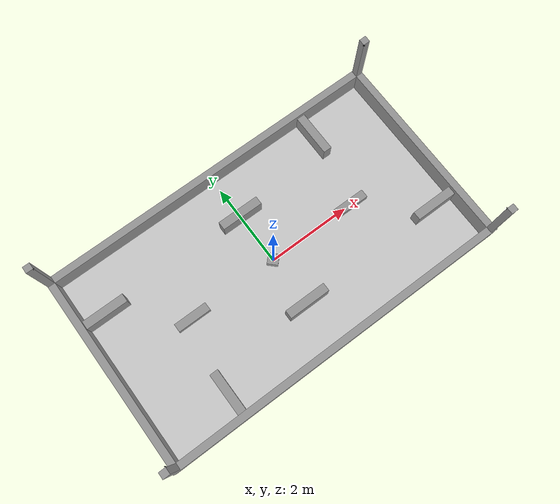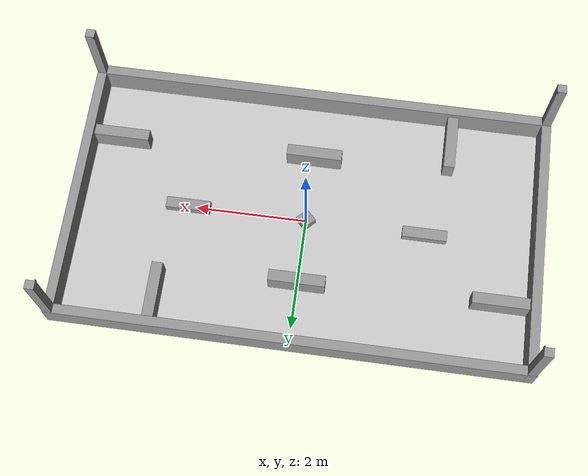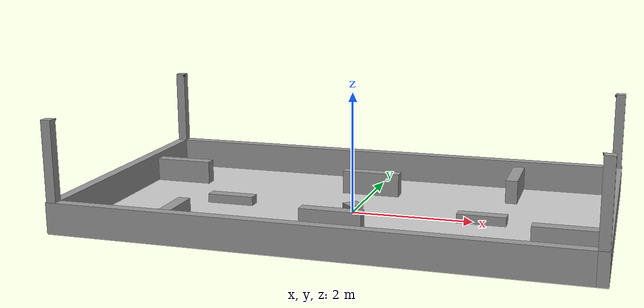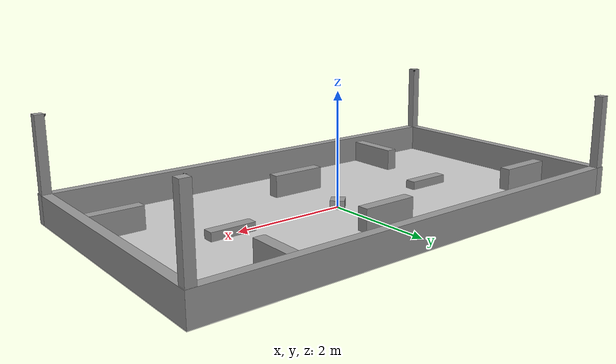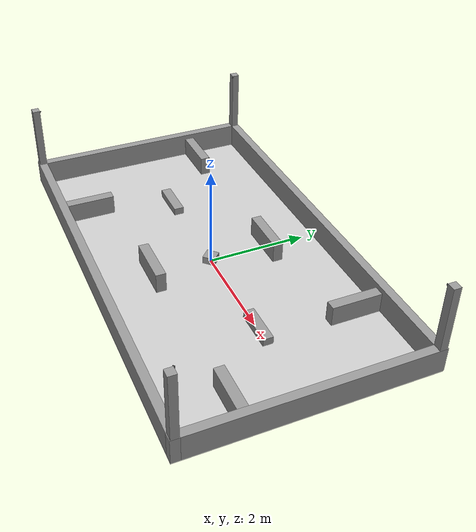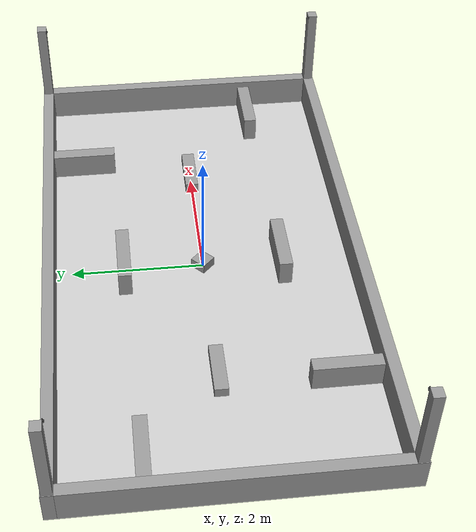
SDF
<sdf version="1.6">
 <world name="default">
  <light name="sun" type="directional">
   <pose>0 0 10 0 -0 0</pose>
   <diffuse>0.8 0.8 0.8 1</diffuse>
   <specular>0.1 0.1 0.1 1</specular>
   <attenuation>
    <range>1000</range>
    <constant>0.9</constant>
    <linear>0.01</linear>
    <quadratic>0.001</quadratic>
   </attenuation>
   <direction>-0.5 0.5 -1</direction>
  </light>
  <gravity>0 0 -9.8</gravity>
  <magnetic_field>6e-06 2.3e-05 -4.2e-05</magnetic_field>
  <atmosphere type="adiabatic"/>
  <physics name="default_physics" default="0" type="ode">
   <max_step_size>0.01</max_step_size>
   <real_time_factor>1</real_time_factor>
   <real_time_update_rate>0</real_time_update_rate>
  </physics>
  <scene><ambient>0.4 0.4 0.4 1</ambient><background>0.7 0.7 0.7 1</background><shadows>1</shadows></scene>
  <spherical_coordinates>
   <surface_model>EARTH_WGS84</surface_model>
   <latitude_deg>0</latitude_deg>
   <longitude_deg>0</longitude_deg>
   <elevation>0</elevation>
   <heading_deg>0</heading_deg>
  </spherical_coordinates>
  <model name="obstacles">
   <pose frame="world">0.0 0.0 0 0 -0 0</pose>
   <link name="wall_north">
    <collision name="collision">
     <geometry><box><size>8.42 0.17 0.5</size></box></geometry>
     <pose>0 0 0.25 0 -0 0</pose>
    </collision>
    <visual name="visual">
     <pose>0 0 0.25 0 -0 0</pose>
     <geometry><box><size>8.42 0.17 0.5</size></box></geometry>
     <material>
      <script><uri>file://media/materials/scripts/gazebo.material</uri><name>Gazebo/Grey</name></script>
      <ambient>1 1 1 1</ambient>
     </material>
    </visual>
    <pose>0 2.325 0 0 -0 1.5e-05</pose>
   </link>
   <link name="wall_east">
    <collision name="collision">
     <geometry><box><size>4.820 0.17 0.5</size></box></geometry>
     <pose>0 0 0.25 0 -0 0</pose>
    </collision>
    <visual name="visual">
     <pose>0 0 0.25 0 -0 0</pose>
     <geometry><box><size>4.820 0.17 0.5</size></box></geometry>
     <material>
      <script><uri>file://media/materials/scripts/gazebo.material</uri><name>Gazebo/Grey</name></script>
      <ambient>1 1 1 1</ambient>
     </material>
    </visual>
    <pose>4.125 0.000000 0 0 0 -1.5708</pose>
   </link>
   <link name="wall_south">
    <collision name="collision">
     <geometry><box><size>8.420 0.17 0.5</size></box></geometry>
     <pose>0 0 0.25 0 -0 0</pose>
    </collision>
    <visual name="visual">
     <pose>0 0 0.25 0 -0 0</pose>
     <geometry><box><size>8.420 0.17 0.5</size></box></geometry>
     <material>
      <script><uri>file://media/materials/scripts/gazebo.material</uri><name>Gazebo/Grey</name></script>
      <ambient>1 1 1 1</ambient>
     </material>
    </visual>
    <pose>0 -2.325 0 0 0 -3.14158</pose>
   </link>
   <link name="wall_west">
    <collision name="collision">
     <geometry><box><size>4.820 0.17 0.5</size></box></geometry>
     <pose>0 0 0.25 0 -0 0</pose>
    </collision>
    <visual name="visual">
     <pose>0 0 0.25 0 -0 0</pose>
     <geometry><box><size>4.820 0.17 0.5</size></box></geometry>
     <material>
      <script><uri>file://media/materials/scripts/gazebo.material</uri><name>Gazebo/Grey</name></script>
      <ambient>1 1 1 1</ambient>
     </material>
    </visual>
    <pose>-4.125 -0.000000 0 0 0 -1.5708</pose>
   </link>
   <link name="obstacle_b5">
    <collision name="collision">
     <geometry><box><size>0.25 0.25 0.15</size></box></geometry>
     <pose>0 0 0.075 0 -0 0</pose>
    </collision>
    <visual name="visual">
     <pose>0 0 0.075 0 -0 0</pose>
     <geometry><box><size>0.25 0.25 0.15</size></box></geometry>
     <material>
      <script><uri>file://media/materials/scripts/gazebo.material</uri><name>Gazebo/Grey</name></script>
      <ambient>1 1 1 1</ambient>
     </material>
    </visual>
    <pose>0 0 0 0 0 -0.785398</pose>
   </link>
   <link name="obstacle_b1">
    <collision name="collision">
     <geometry><box><size>1.0 0.2 0.4</size></box></geometry>
     <pose>0 0 0.2 0 -0 0</pose>
    </collision>
    <visual name="visual">
     <pose>0 0 0.2 0 -0 0</pose>
     <geometry><box><size>1.0 0.2 0.4</size></box></geometry>
     <material>
      <script><uri>file://media/materials/scripts/gazebo.material</uri><name>Gazebo/Grey</name></script>
      <ambient>1 1 1 1</ambient>
     </material>
    </visual>
    <pose>-3.54000 1.14000 0 0 -0 0</pose>
   </link>
   <link name="obstacle_b3">
    <collision name="collision">
     <geometry><box><size>1 0.2 0.4</size></box></geometry>
     <pose>0 0 0.2 0 -0 0</pose>
    </collision>
    <visual name="visual">
     <pose>0 0 0.2 0 -0 0</pose>
     <geometry><box><size>1 0.2 0.4</size></box></geometry>
     <material>
      <script><uri>file://media/materials/scripts/gazebo.material</uri><name>Gazebo/Grey</name></script>
      <ambient>1 1 1 1</ambient>
     </material>
    </visual>
    <pose>-2.44000 -1.74000 0 0 -0 1.5708</pose>
   </link>
   <link name="obstacle_b9">
    <collision name="collision">
     <geometry><box><size>1 0.2 0.4</size></box></geometry>
     <pose>0 0 0.2 0 -0 0</pose>
    </collision>
    <visual name="visual">
     <pose>0 0 0.2 0 -0 0</pose>
     <geometry><box><size>1 0.2 0.4</size></box></geometry>
     <material>
      <script><uri>file://media/materials/scripts/gazebo.material</uri><name>Gazebo/Grey</name></script>
      <ambient>1 1 1 1</ambient>
     </material>
    </visual>
    <pose>3.540000 -1.140000 0 0 -0 3.14159</pose>
   </link>
   <link name="obstacle_b7">
    <collision name="collision">
     <geometry><box><size>1 0.2 0.4</size></box></geometry>
     <pose>0 0 0.2 0 -0 0</pose>
    </collision>
    <visual name="visual">
     <pose>0 0 0.2 0 -0 0</pose>
     <geometry><box><size>1 0.2 0.4</size></box></geometry>
     <material>
      <script><uri>file://media/materials/scripts/gazebo.material</uri><name>Gazebo/Grey</name></script>
      <ambient>1 1 1 1</ambient>
     </material>
    </visual>
    <pose>2.440000 1.740000 0 0 -0 1.5708</pose>
   </link>
   <link name="obstacle_b4">
    <collision name="collision">
     <geometry><box><size>1 0.2 0.4</size></box></geometry>
     <pose>0 0 0.2 0 -0 0</pose>
    </collision>
    <visual name="visual">
     <pose>0 0 0.2 0 -0 0</pose>
     <geometry><box><size>1 0.2 0.4</size></box></geometry>
     <material>
      <script><uri>file://media/materials/scripts/gazebo.material</uri><name>Gazebo/Grey</name></script>
      <ambient>1 1 1 1</ambient>
     </material>
    </visual>
    <pose>0.000000 1.205000 0 0 -0 0</pose>
   </link>
   <link name="obstacle_b6">
    <collision name="collision">
     <geometry><box><size>1 0.2 0.4</size></box></geometry>
     <pose>0 0 0.2 0 -0 0</pose>
    </collision>
    <visual name="visual">
     <pose>0 0 0.2 0 -0 0</pose>
     <geometry><box><size>1 0.2 0.4</size></box></geometry>
     <material>
      <script><uri>file://media/materials/scripts/gazebo.material</uri><name>Gazebo/Grey</name></script>
      <ambient>1 1 1 1</ambient>
     </material>
    </visual>
    <pose>0.000000 -1.205000 0 0 -0 0</pose>
   </link>
   <link name="obstacle_b2">
    <collision name="collision">
     <geometry><box><size>0.8 0.2 0.15</size></box></geometry>
     <pose>0 0 0.075 0 -0 0</pose>
    </collision>
    <visual name="visual">
     <pose>0 0 0.075 0 -0 0</pose>
     <geometry><box><size>0.8 0.2 0.15</size></box></geometry>
     <material>
      <script><uri>file://media/materials/scripts/gazebo.material</uri><name>Gazebo/Grey</name></script>
      <ambient>1 1 1 1</ambient>
     </material>
    </visual>
    <pose>-2.14000 -0.000000 0 0 -0 0</pose>
   </link>
   <link name="obstacle_b8">
    <collision name="collision">
     <geometry><box><size>0.8 0.2 0.15</size></box></geometry>
     <pose>0 0 0.075 0 -0 0</pose>
    </collision>
    <visual name="visual">
     <pose>0 0 0.075 0 -0 0</pose>
     <geometry><box><size>0.8 0.2 0.15</size></box></geometry>
     <material>
      <script><uri>file://media/materials/scripts/gazebo.material</uri><name>Gazebo/Grey</name></script>
      <ambient>1 1 1 1</ambient>
     </material>
    </visual>
    <pose>2.140000 -0.000000 0 0 -0 0</pose>
   </link>
   <static>1</static>
  </model>
  <model name="lookout_d4">
   <pose frame="world">4.12 2.32 0 0 -0 0</pose>
   <link name="pole">
    <collision name="collision">
     <geometry><box><size>0.16 0.15 1.768</size></box></geometry>
     <pose>0 0 0.904 0 -0 0</pose>
    </collision>
    <visual name="visual">
     <pose>0 0 0.904 0 -0 0</pose>
     <geometry><box><size>0.16 0.15 1.768</size></box></geometry>
     <material>
      <script><uri>file://media/materials/scripts/gazebo.material</uri><name>Gazebo/Grey</name></script>
      <ambient>1 1 1 1</ambient>
     </material>
    </visual>
   </link>
   <static>1</static>
  </model>
  <model name="lookout_d3">
   <pose frame="world">4.12 -2.32 0 0 -0 0</pose>
   <link name="pole">
    <collision name="collision">
     <geometry><box><size>0.16 0.15 1.768</size></box></geometry>
     <pose>0 0 0.904 0 -0 0</pose>
    </collision>
    <visual name="visual">
     <pose>0 0 0.904 0 -0 0</pose>
     <geometry><box><size>0.16 0.15 1.768</size></box></geometry>
     <material>
      <script><uri>file://media/materials/scripts/gazebo.material</uri><name>Gazebo/Grey</name></script>
      <ambient>1 1 1 1</ambient>
     </material>
    </visual>
   </link>
   <static>1</static>
  </model>
  <model name="lookout_d2">
   <pose frame="world">-4.12 -2.32 0 0 -0 0</pose>
   <link name="pole">
    <collision name="collision">
     <geometry><box><size>0.16 0.15 1.768</size></box></geometry>
     <pose>0 0 0.904 0 -0 0</pose>
    </collision>
    <visual name="visual">
     <pose>0 0 0.904 0 -0 0</pose>
     <geometry><box><size>0.16 0.15 1.768</size></box></geometry>
     <material>
      <script><uri>file://media/materials/scripts/gazebo.material</uri><name>Gazebo/Grey</name></script>
      <ambient>1 1 1 1</ambient>
     </material>
    </visual>
   </link>
   <static>1</static>
  </model>
  <model name="lookout_d1">
   <pose frame="world">-4.12 2.32 0 0 -0 0</pose>
   <link name="pole">
    <collision name="collision">
     <geometry><box><size>0.16 0.15 1.768</size></box></geometry>
     <pose>0 0 0.904 0 -0 0</pose>
    </collision>
    <visual name="visual">
     <pose>0 0 0.904 0 -0 0</pose>
     <geometry><box><size>0.16 0.15 1.768</size></box></geometry>
     <material>
      <script><uri>file://media/materials/scripts/gazebo.material</uri><name>Gazebo/Grey</name></script>
      <ambient>1 1 1 1</ambient>
     </material>
    </visual>
   </link>
   <static>1</static>
  </model>
  <model name="lookout_d4_camera">
   <link name="camera_link">
    <inertial>
     <mass>0.1</mass>
     <inertia><ixx>0.01</ixx><ixy>0</ixy><ixz>0</ixz><iyy>0.01</iyy><iyz>0</iyz><izz>0.01</izz></inertia>
    </inertial>
    <sensor name="camera_node" type="camera">
     <update_rate>30</update_rate>
     <camera name="lookout_d4_camera">
      <horizontal_fov>1.39626</horizontal_fov>
      <image><width>1280</width><height>720</height><format>R8G8B8</format></image>
      <clip><near>0.02</near><far>300</far></clip>
      <noise><type>gaussian</type><mean>0</mean><stddev>0.007</stddev></noise>
     </camera>
     <plugin name="gazebo_camera" filename="libgazebo_ros_camera.so">
      <robotNamespace>/outpost_camera</robotNamespace>
      <cameraName>outpost_camera0</cameraName>
      <imageTopicName>image_raw</imageTopicName>
     </plugin>
    </sensor>
    <visual name="camera_link_visual">
     <geometry><box><size>0.01 0.04 0.04</size></box></geometry>
     <material>
      <script><name>Gazebo/Black</name><uri>file://media/materials/scripts/gazebo.material</uri></script>
      <ambient>0 0 0 1</ambient>
      <diffuse>0 0 0 1</diffuse>
      <specular>0.1 0.1 0.1 1</specular>
      <emissive>0 0 0 1</emissive>
     </material>
    </visual>
    <collision name="camera_link_collision">
     <geometry><box><size>0.01 0.04 0.04</size></box></geometry>
     <surface>
      <friction>
       <ode><mu>1</mu><mu2>1</mu2><fdir1>0 0 0</fdir1><slip1>0</slip1><slip2>0</slip2></ode>
       <torsional>
        <coefficient>1</coefficient>
        <patch_radius>0</patch_radius>
        <surface_radius>0</surface_radius>
        <use_patch_radius>1</use_patch_radius>
        <ode><slip>0</slip></ode>
       </torsional>
      </friction>
      <bounce><restitution_coefficient>0</restitution_coefficient><threshold>1e+06</threshold></bounce>
      <contact>
       <collide_without_contact>0</collide_without_contact>
       <collide_without_contact_bitmask>1</collide_without_contact_bitmask>
       <collide_bitmask>1</collide_bitmask>
       <ode>
        <soft_cfm>0</soft_cfm>
        <soft_erp>0.2</soft_erp>
        <kp>1e+13</kp>
        <kd>1</kd>
        <max_vel>0.01</max_vel>
        <min_depth>0</min_depth>
       </ode>
       <bullet>
        <split_impulse>1</split_impulse>
        <split_impulse_penetration_threshold>-0.01</split_impulse_penetration_threshold>
        <soft_cfm>0</soft_cfm>
        <soft_erp>0.2</soft_erp>
        <kp>1e+13</kp>
        <kd>1</kd>
       </bullet>
      </contact>
     </surface>
    </collision>
   </link>
   <static>1</static>
   <pose frame="world">4.04 2.24 1.768 0 0.25 -2.355</pose>
  </model>
  <model name="lookout_d3_camera">
   <link name="camera_link">
    <pose frame="world">0 0 -0 0 -0 0</pose>
    <inertial>
     <mass>0.1</mass>
     <inertia><ixx>0.01</ixx><ixy>0</ixy><ixz>0</ixz><iyy>0.01</iyy><iyz>0</iyz><izz>0.01</izz></inertia>
    </inertial>
    <sensor name="camera_node" type="camera">
     <update_rate>30</update_rate>
     <camera name="lookout_d3_camera">
      <horizontal_fov>1.39626</horizontal_fov>
      <image><width>1280</width><height>720</height><format>R8G8B8</format></image>
      <clip><near>0.02</near><far>300</far></clip>
      <noise><type>gaussian</type><mean>0</mean><stddev>0.007</stddev></noise>
     </camera>
     <plugin name="gazebo_camera" filename="libgazebo_ros_camera.so">
      <robotNamespace>/outpost_camera</robotNamespace>
      <cameraName>outpost_camera1</cameraName>
      <imageTopicName>image_raw</imageTopicName>
     </plugin>
    </sensor>
    <visual name="camera_link_visual">
     <geometry><box><size>0.01 0.04 0.04</size></box></geometry>
     <material>
      <script><name>Gazebo/Black</name><uri>file://media/materials/scripts/gazebo.material</uri></script>
      <ambient>0 0 0 1</ambient>
      <diffuse>0 0 0 1</diffuse>
      <specular>0.1 0.1 0.1 1</specular>
      <emissive>0 0 0 1</emissive>
     </material>
    </visual>
    <collision name="camera_link_collision">
     <geometry><box><size>0.01 0.04 0.04</size></box></geometry>
     <surface>
      <friction>
       <ode><mu>1</mu><mu2>1</mu2><fdir1>0 0 0</fdir1><slip1>0</slip1><slip2>0</slip2></ode>
       <torsional>
        <coefficient>1</coefficient>
        <patch_radius>0</patch_radius>
        <surface_radius>0</surface_radius>
        <use_patch_radius>1</use_patch_radius>
        <ode><slip>0</slip></ode>
       </torsional>
      </friction>
      <bounce><restitution_coefficient>0</restitution_coefficient><threshold>1e+06</threshold></bounce>
      <contact>
       <collide_without_contact>0</collide_without_contact>
       <collide_without_contact_bitmask>1</collide_without_contact_bitmask>
       <collide_bitmask>1</collide_bitmask>
       <ode>
        <soft_cfm>0</soft_cfm>
        <soft_erp>0.2</soft_erp>
        <kp>1e+13</kp>
        <kd>1</kd>
        <max_vel>0.01</max_vel>
        <min_depth>0</min_depth>
       </ode>
       <bullet>
        <split_impulse>1</split_impulse>
        <split_impulse_penetration_threshold>-0.01</split_impulse_penetration_threshold>
        <soft_cfm>0</soft_cfm>
        <soft_erp>0.2</soft_erp>
        <kp>1e+13</kp>
        <kd>1</kd>
       </bullet>
      </contact>
     </surface>
    </collision>
   </link>
   <static>1</static>
   <pose frame="world">4.04 -2.24 1.768 0 0.25 2.355</pose>
  </model>
  <model name="lookout_d2_camera">
   <link name="camera_link">
    <inertial>
     <mass>0.1</mass>
     <inertia><ixx>0.01</ixx><ixy>0</ixy><ixz>0</ixz><iyy>0.01</iyy><iyz>0</iyz><izz>0.01</izz></inertia>
    </inertial>
    <sensor name="camera_node" type="camera">
     <update_rate>30</update_rate>
     <camera name="lookout_d2_camera">
      <horizontal_fov>1.39626</horizontal_fov>
      <image><width>1280</width><height>720</height><format>R8G8B8</format></image>
      <clip><near>0.02</near><far>300</far></clip>
      <noise><type>gaussian</type><mean>0</mean><stddev>0.007</stddev></noise>
     </camera>
     <plugin name="gazebo_camera" filename="libgazebo_ros_camera.so">
      <robotNamespace>/outpost_camera</robotNamespace>
      <cameraName>outpost_camera2</cameraName>
      <imageTopicName>image_raw</imageTopicName>
     </plugin>
    </sensor>
    <visual name="camera_link_visual">
     <geometry><box><size>0.01 0.04 0.04</size></box></geometry>
     <material>
      <script><name>Gazebo/Black</name><uri>file://media/materials/scripts/gazebo.material</uri></script>
      <ambient>0 0 0 1</ambient>
      <diffuse>0 0 0 1</diffuse>
      <specular>0.1 0.1 0.1 1</specular>
      <emissive>0 0 0 1</emissive>
     </material>
    </visual>
    <collision name="camera_link_collision">
     <geometry><box><size>0.01 0.04 0.04</size></box></geometry>
     <surface>
      <friction>
       <ode><mu>1</mu><mu2>1</mu2><fdir1>0 0 0</fdir1><slip1>0</slip1><slip2>0</slip2></ode>
       <torsional>
        <coefficient>1</coefficient>
        <patch_radius>0</patch_radius>
        <surface_radius>0</surface_radius>
        <use_patch_radius>1</use_patch_radius>
        <ode><slip>0</slip></ode>
       </torsional>
      </friction>
      <bounce><restitution_coefficient>0</restitution_coefficient><threshold>1e+06</threshold></bounce>
      <contact>
       <collide_without_contact>0</collide_without_contact>
       <collide_without_contact_bitmask>1</collide_without_contact_bitmask>
       <collide_bitmask>1</collide_bitmask>
       <ode>
        <soft_cfm>0</soft_cfm>
        <soft_erp>0.2</soft_erp>
        <kp>1e+13</kp>
        <kd>1</kd>
        <max_vel>0.01</max_vel>
        <min_depth>0</min_depth>
       </ode>
       <bullet>
        <split_impulse>1</split_impulse>
        <split_impulse_penetration_threshold>-0.01</split_impulse_penetration_threshold>
        <soft_cfm>0</soft_cfm>
        <soft_erp>0.2</soft_erp>
        <kp>1e+13</kp>
        <kd>1</kd>
       </bullet>
      </contact>
     </surface>
    </collision>
   </link>
   <static>1</static>
   <pose frame="world">-4.04 -2.24 1.768 0 0.25 0.785</pose>
  </model>
  <model name="lookout_d1_camera">
   <link name="camera_link">
    <inertial>
     <mass>0.1</mass>
     <inertia><ixx>0.01</ixx><ixy>0</ixy><ixz>0</ixz><iyy>0.01</iyy><iyz>0</iyz><izz>0.01</izz></inertia>
    </inertial>
    <sensor name="camera_node" type="camera">
     <update_rate>30</update_rate>
     <camera name="lookout_d1_camera">
      <horizontal_fov>1.39626</horizontal_fov>
      <image><width>1280</width><height>720</height><format>R8G8B8</format></image>
      <clip><near>0.02</near><far>300</far></clip>
      <noise><type>gaussian</type><mean>0</mean><stddev>0.007</stddev></noise>
     </camera>
     <plugin name="gazebo_camera" filename="libgazebo_ros_camera.so">
      <robotNamespace>/outpost_camera</robotNamespace>
      <cameraName>outpost_camera3</cameraName>
      <imageTopicName>image_raw</imageTopicName>
     </plugin>
    </sensor>
    <visual name="camera_link_visual">
     <geometry><box><size>0.01 0.04 0.04</size></box></geometry>
     <material>
      <script><name>Gazebo/Black</name><uri>file://media/materials/scripts/gazebo.material</uri></script>
      <ambient>0 0 0 1</ambient>
      <diffuse>0 0 0 1</diffuse>
      <specular>0.1 0.1 0.1 1</specular>
      <emissive>0 0 0 1</emissive>
     </material>
    </visual>
    <collision name="camera_link_collision">
     <geometry><box><size>0.01 0.04 0.04</size></box></geometry>
     <surface>
      <friction>
       <ode><mu>1</mu><mu2>1</mu2><fdir1>0 0 0</fdir1><slip1>0</slip1><slip2>0</slip2></ode>
       <torsional>
        <coefficient>1</coefficient>
        <patch_radius>0</patch_radius>
        <surface_radius>0</surface_radius>
        <use_patch_radius>1</use_patch_radius>
        <ode><slip>0</slip></ode>
       </torsional>
      </friction>
      <bounce><restitution_coefficient>0</restitution_coefficient><threshold>1e+06</threshold></bounce>
      <contact>
       <collide_without_contact>0</collide_without_contact>
       <collide_without_contact_bitmask>1</collide_without_contact_bitmask>
       <collide_bitmask>1</collide_bitmask>
       <ode>
        <soft_cfm>0</soft_cfm>
        <soft_erp>0.2</soft_erp>
        <kp>1e+13</kp>
        <kd>1</kd>
        <max_vel>0.01</max_vel>
        <min_depth>0</min_depth>
       </ode>
       <bullet>
        <split_impulse>1</split_impulse>
        <split_impulse_penetration_threshold>-0.01</split_impulse_penetration_threshold>
        <soft_cfm>0</soft_cfm>
        <soft_erp>0.2</soft_erp>
        <kp>1e+13</kp>
        <kd>1</kd>
       </bullet>
      </contact>
     </surface>
    </collision>
   </link>
   <static>1</static>
   <pose frame="world">-4.04 2.24 1.768 0 0.25 -0.785</pose>
  </model>
  <model name="icra_ground_plane">
   <static>1</static>
   <link name="link">
    <collision name="collision">
     <geometry><plane><normal>0 0 1</normal><size>8.42 4.82</size></plane></geometry>
     <surface><friction><ode><mu>100</mu><mu2>50</mu2></ode></friction></surface>
    </collision>
    <visual name="visual">
     <cast_shadows>0</cast_shadows>
     <geometry><plane><normal>0 0 1</normal><size>8.42 4.82</size></plane></geometry>
     <material>
      <script>
       <uri>model://icra_ground_plane/materials/scripts/</uri>
       <uri>model://icra_ground_plane/materials/textures/</uri>
       <name>icra_ground_plane/Image</name>
      </script>
     </material>
    </visual>
   </link>
  </model>
  <plugin name="gazebo_occupancy_map" filename="libgazebo_2Dmap_plugin.so">
   <map_resolution>0.05</map_resolution>
   <map_z>0.253</map_z>
   <map_size_x>8.45</map_size_x>
   <map_size_y>8.45</map_size_y>
   <init_robot_x>1.0</init_robot_x>
   <init_robot_y>1.0</init_robot_y>
  </plugin>
 </world>
</sdf>
